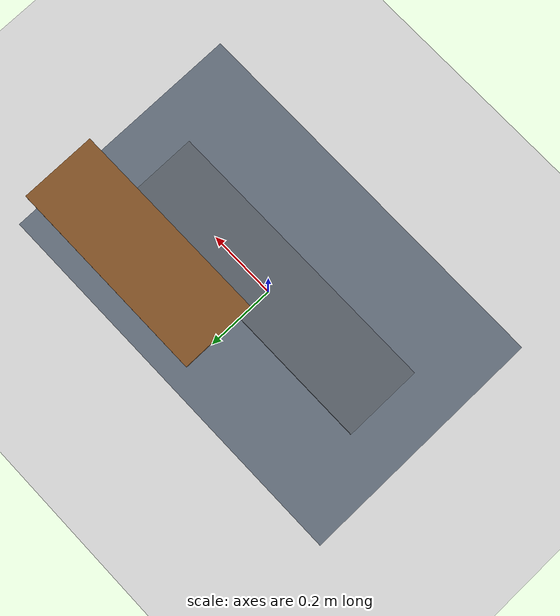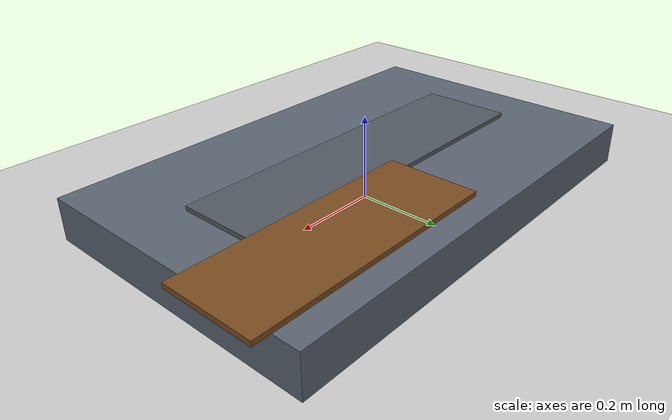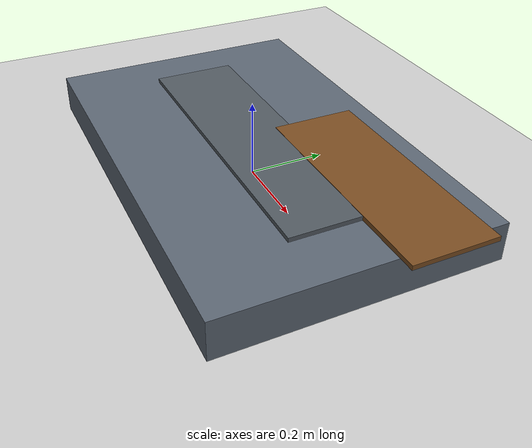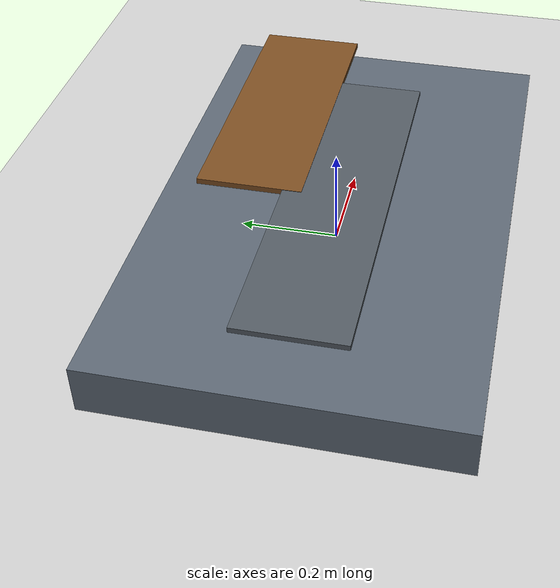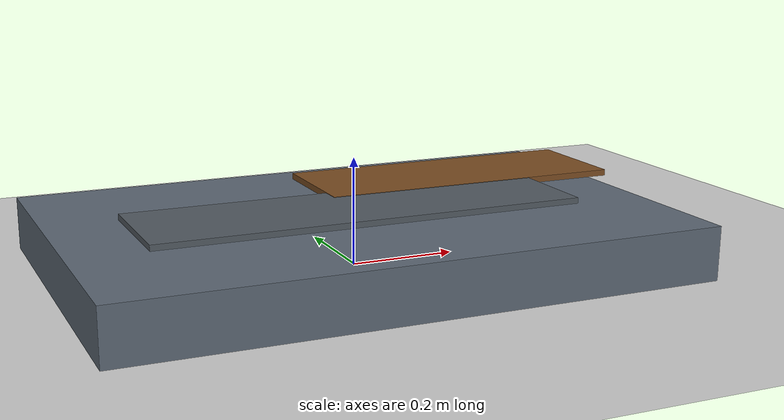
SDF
<?xml version="1.0"?>
<sdf version="1.6">
  <world name="designgrounded_workcell">
    <include>
      <uri>model://ground_plane</uri>
    </include>
    <include>
      <uri>model://sun</uri>
    </include>

    <model name="work_table">
      <static>true</static>
      <pose>0 0 0.05 0 0 0</pose>
      <link name="table">
        <visual name="top">
          <geometry><box><size>1.10 0.70 0.10</size></box></geometry>
          <material>
            <ambient>0.25 0.28 0.32 1</ambient>
            <diffuse>0.36 0.40 0.45 1</diffuse>
          </material>
        </visual>
        <collision name="top">
          <geometry><box><size>1.10 0.70 0.10</size></box></geometry>
        </collision>
      </link>
    </model>

    <model name="assembly_base">
      <static>true</static>
      <pose>0 0 0.105 0 0 0</pose>
      <link name="base">
        <visual name="visual">
          <geometry><box><size>0.82 0.22 0.012</size></box></geometry>
          <material>
            <ambient>0.20 0.22 0.24 1</ambient>
            <diffuse>0.32 0.35 0.38 1</diffuse>
          </material>
        </visual>
        <collision name="collision">
          <geometry><box><size>0.82 0.22 0.012</size></box></geometry>
        </collision>
      </link>
    </model>

    <model name="staging_tray">
      <static>true</static>
      <pose>0.29 0.18 0.106 0 0 0</pose>
      <link name="tray">
        <visual name="visual">
          <geometry><box><size>0.60 0.22 0.012</size></box></geometry>
          <material>
            <ambient>0.35 0.22 0.10 1</ambient>
            <diffuse>0.48 0.30 0.13 1</diffuse>
          </material>
        </visual>
        <collision name="collision">
          <geometry><box><size>0.60 0.22 0.012</size></box></geometry>
        </collision>
      </link>
    </model>

    <physics type="ode">
      <max_step_size>0.001</max_step_size>
      <real_time_factor>1.0</real_time_factor>
      <real_time_update_rate>1000</real_time_update_rate>
    </physics>

    <plugin name="gazebo_ros_state" filename="libgazebo_ros_state.so">
      <ros>
        <namespace>/gazebo</namespace>
      </ros>
      <update_rate>30</update_rate>
    </plugin>
  </world>
</sdf>
